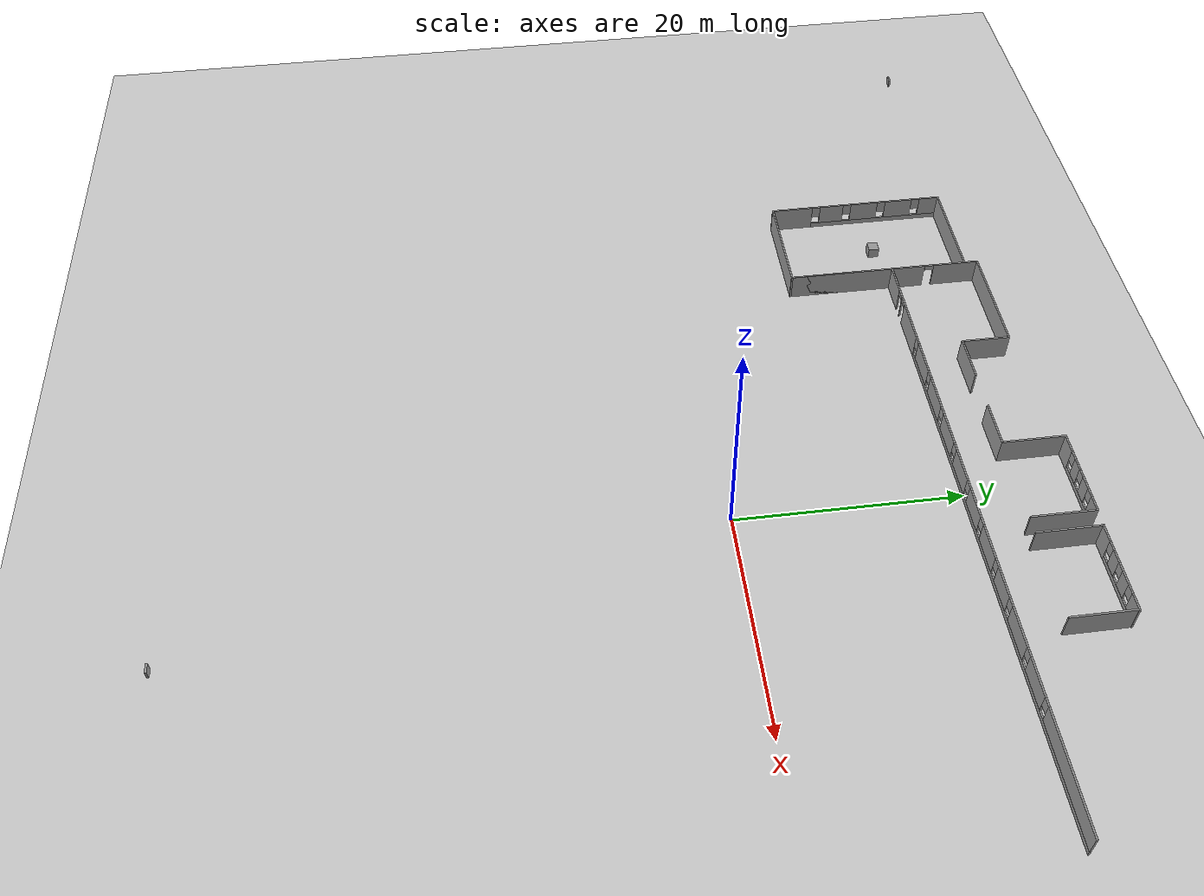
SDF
<sdf version="1.6">
 <world name="default">
  <model name="ground_plane">
   <static>1</static>
   <link name="link">
    <collision name="collision">
     <geometry><plane><normal>0 0 1</normal><size>100 100</size></plane></geometry>
     <surface>
      <contact><collide_bitmask>65535</collide_bitmask></contact>
      <friction><ode><mu>100</mu><mu2>50</mu2></ode></friction>
     </surface>
    </collision>
    <visual name="visual">
     <cast_shadows>0</cast_shadows>
     <geometry><plane><normal>0 0 1</normal><size>100 100</size></plane></geometry>
     <material>
      <script><uri>file://media/materials/scripts/gazebo.material</uri><name>Gazebo/Grey</name></script>
     </material>
    </visual>
   </link>
  </model>
  <model name="firstFloor">
   <pose>-0.1165 3.07366 0 0 -0 0</pose>
   <link name="Wall_15">
    <pose>2.99839 16.757 0 0 -0 0</pose>
    <visual name="Wall_15_Visual_0">
     <pose>-26.7456 0 1.25 0 -0 0</pose>
     <geometry><box><size>3.00874 0.15 2.5</size></box></geometry>
     <material>
      <script><uri>file://media/materials/scripts/gazebo.material</uri><name>Gazebo/Grey</name></script>
      <ambient>1 1 1 1</ambient>
     </material>
     <meta><layer>0</layer></meta>
    </visual>
    <collision name="Wall_15_Collision_0">
     <geometry><box><size>3.00874 0.15 2.5</size></box></geometry>
     <pose>-26.7456 0 1.25 0 -0 0</pose>
    </collision>
    <visual name="Wall_15_Visual_1">
     <pose>-24.2997 0 1.25 0 -0 0</pose>
     <geometry><box><size>0.083156 0.15 2.5</size></box></geometry>
     <material>
      <script><uri>file://media/materials/scripts/gazebo.material</uri><name>Gazebo/Grey</name></script>
      <ambient>1 1 1 1</ambient>
     </material>
     <meta><layer>0</layer></meta>
    </visual>
    <collision name="Wall_15_Collision_1">
     <geometry><box><size>0.083156 0.15 2.5</size></box></geometry>
     <pose>-24.2997 0 1.25 0 -0 0</pose>
    </collision>
    <visual name="Wall_15_Visual_2">
     <pose>-21.2466 0 1.25 0 -0 0</pose>
     <geometry><box><size>4.22309 0.15 2.5</size></box></geometry>
     <material>
      <script><uri>file://media/materials/scripts/gazebo.material</uri><name>Gazebo/Grey</name></script>
      <ambient>1 1 1 1</ambient>
     </material>
     <meta><layer>0</layer></meta>
    </visual>
    <collision name="Wall_15_Collision_2">
     <geometry><box><size>4.22309 0.15 2.5</size></box></geometry>
     <pose>-21.2466 0 1.25 0 -0 0</pose>
    </collision>
    <visual name="Wall_15_Visual_3">
     <pose>4.55749 0 0.25 0 -0 0</pose>
     <geometry><box><size>47.385 0.15 0.5</size></box></geometry>
     <material>
      <script><uri>file://media/materials/scripts/gazebo.material</uri><name>Gazebo/Grey</name></script>
      <ambient>1 1 1 1</ambient>
     </material>
     <meta><layer>0</layer></meta>
    </visual>
    <collision name="Wall_15_Collision_3">
     <geometry><box><size>47.385 0.15 0.5</size></box></geometry>
     <pose>4.55749 0 0.25 0 -0 0</pose>
    </collision>
    <visual name="Wall_15_Visual_4">
     <pose>-16.6507 0 1.5 0 -0 0</pose>
     <geometry><box><size>3.36858 0.15 2</size></box></geometry>
     <material>
      <script><uri>file://media/materials/scripts/gazebo.material</uri><name>Gazebo/Grey</name></script>
      <ambient>1 1 1 1</ambient>
     </material>
     <meta><layer>0</layer></meta>
    </visual>
    <collision name="Wall_15_Collision_4">
     <geometry><box><size>3.36858 0.15 2</size></box></geometry>
     <pose>-16.6507 0 1.5 0 -0 0</pose>
    </collision>
    <visual name="Wall_15_Visual_5">
     <pose>-12.4625 0 1.5 0 -0 0</pose>
     <geometry><box><size>3.40791 0.15 2</size></box></geometry>
     <material>
      <script><uri>file://media/materials/scripts/gazebo.material</uri><name>Gazebo/Grey</name></script>
      <ambient>1 1 1 1</ambient>
     </material>
     <meta><layer>0</layer></meta>
    </visual>
    <collision name="Wall_15_Collision_5">
     <geometry><box><size>3.40791 0.15 2</size></box></geometry>
     <pose>-12.4625 0 1.5 0 -0 0</pose>
    </collision>
    <visual name="Wall_15_Visual_6">
     <pose>-8.34568 0 1.5 0 -0 0</pose>
     <geometry><box><size>3.2257 0.15 2</size></box></geometry>
     <material>
      <script><uri>file://media/materials/scripts/gazebo.material</uri><name>Gazebo/Grey</name></script>
      <ambient>1 1 1 1</ambient>
     </material>
     <meta><layer>0</layer></meta>
    </visual>
    <collision name="Wall_15_Collision_6">
     <geometry><box><size>3.2257 0.15 2</size></box></geometry>
     <pose>-8.34568 0 1.5 0 -0 0</pose>
    </collision>
    <visual name="Wall_15_Visual_7">
     <pose>-4.31076 0 1.5 0 -0 0</pose>
     <geometry><box><size>3.24413 0.15 2</size></box></geometry>
     <material>
      <script><uri>file://media/materials/scripts/gazebo.material</uri><name>Gazebo/Grey</name></script>
      <ambient>1 1 1 1</ambient>
     </material>
     <meta><layer>0</layer></meta>
    </visual>
    <collision name="Wall_15_Collision_7">
     <geometry><box><size>3.24413 0.15 2</size></box></geometry>
     <pose>-4.31076 0 1.5 0 -0 0</pose>
    </collision>
    <visual name="Wall_15_Visual_8">
     <pose>-0.385574 0 1.5 0 -0 0</pose>
     <geometry><box><size>3.00624 0.15 2</size></box></geometry>
     <material>
      <script><uri>file://media/materials/scripts/gazebo.material</uri><name>Gazebo/Grey</name></script>
      <ambient>1 1 1 1</ambient>
     </material>
     <meta><layer>0</layer></meta>
    </visual>
    <collision name="Wall_15_Collision_8">
     <geometry><box><size>3.00624 0.15 2</size></box></geometry>
     <pose>-0.385574 0 1.5 0 -0 0</pose>
    </collision>
    <visual name="Wall_15_Visual_9">
     <pose>3.53961 0 1.5 0 -0 0</pose>
     <geometry><box><size>3.24413 0.15 2</size></box></geometry>
     <material>
      <script><uri>file://media/materials/scripts/gazebo.material</uri><name>Gazebo/Grey</name></script>
      <ambient>1 1 1 1</ambient>
     </material>
     <meta><layer>0</layer></meta>
    </visual>
    <collision name="Wall_15_Collision_9">
     <geometry><box><size>3.24413 0.15 2</size></box></geometry>
     <pose>3.53961 0 1.5 0 -0 0</pose>
    </collision>
    <visual name="Wall_15_Visual_10">
     <pose>7.39046 0 1.5 0 -0 0</pose>
     <geometry><box><size>2.85756 0.15 2</size></box></geometry>
     <material>
      <script><uri>file://media/materials/scripts/gazebo.material</uri><name>Gazebo/Grey</name></script>
      <ambient>1 1 1 1</ambient>
     </material>
     <meta><layer>0</layer></meta>
    </visual>
    <collision name="Wall_15_Collision_10">
     <geometry><box><size>2.85756 0.15 2</size></box></geometry>
     <pose>7.39046 0 1.5 0 -0 0</pose>
    </collision>
    <visual name="Wall_15_Visual_11">
     <pose>11.4197 0 1.5 0 -0 0</pose>
     <geometry><box><size>3.60097 0.15 2</size></box></geometry>
     <material>
      <script><uri>file://media/materials/scripts/gazebo.material</uri><name>Gazebo/Grey</name></script>
      <ambient>1 1 1 1</ambient>
     </material>
     <meta><layer>0</layer></meta>
    </visual>
    <collision name="Wall_15_Collision_11">
     <geometry><box><size>3.60097 0.15 2</size></box></geometry>
     <pose>11.4197 0 1.5 0 -0 0</pose>
    </collision>
    <visual name="Wall_15_Visual_12">
     <pose>15.7166 0 1.5 0 -0 0</pose>
     <geometry><box><size>3.39282 0.15 2</size></box></geometry>
     <material>
      <script><uri>file://media/materials/scripts/gazebo.material</uri><name>Gazebo/Grey</name></script>
      <ambient>1 1 1 1</ambient>
     </material>
     <meta><layer>0</layer></meta>
    </visual>
    <collision name="Wall_15_Collision_12">
     <geometry><box><size>3.39282 0.15 2</size></box></geometry>
     <pose>15.7166 0 1.5 0 -0 0</pose>
    </collision>
    <visual name="Wall_15_Visual_13">
     <pose>23.2315 0 1.5 0 -0 0</pose>
     <geometry><box><size>10.037 0.15 2</size></box></geometry>
     <material>
      <script><uri>file://media/materials/scripts/gazebo.material</uri><name>Gazebo/Grey</name></script>
      <ambient>1 1 1 1</ambient>
     </material>
     <meta><layer>0</layer></meta>
    </visual>
    <collision name="Wall_15_Collision_13">
     <geometry><box><size>10.037 0.15 2</size></box></geometry>
     <pose>23.2315 0 1.5 0 -0 0</pose>
    </collision>
    <visual name="Wall_15_Visual_14">
     <pose>-18.735 0 1.9 0 -0 0</pose>
     <geometry><box><size>0.8 0.15 1.2</size></box></geometry>
     <material>
      <script><uri>file://media/materials/scripts/gazebo.material</uri><name>Gazebo/Grey</name></script>
      <ambient>1 1 1 1</ambient>
     </material>
     <meta><layer>0</layer></meta>
    </visual>
    <collision name="Wall_15_Collision_14">
     <geometry><box><size>0.8 0.15 1.2</size></box></geometry>
     <pose>-18.735 0 1.9 0 -0 0</pose>
    </collision>
    <visual name="Wall_15_Visual_15">
     <pose>-14.5664 0 1.9 0 -0 0</pose>
     <geometry><box><size>0.8 0.15 1.2</size></box></geometry>
     <material>
      <script><uri>file://media/materials/scripts/gazebo.material</uri><name>Gazebo/Grey</name></script>
      <ambient>1 1 1 1</ambient>
     </material>
     <meta><layer>0</layer></meta>
    </visual>
    <collision name="Wall_15_Collision_15">
     <geometry><box><size>0.8 0.15 1.2</size></box></geometry>
     <pose>-14.5664 0 1.9 0 -0 0</pose>
    </collision>
    <visual name="Wall_15_Visual_16">
     <pose>-10.3585 0 1.9 0 -0 0</pose>
     <geometry><box><size>0.8 0.15 1.2</size></box></geometry>
     <material>
      <script><uri>file://media/materials/scripts/gazebo.material</uri><name>Gazebo/Grey</name></script>
      <ambient>1 1 1 1</ambient>
     </material>
     <meta><layer>0</layer></meta>
    </visual>
    <collision name="Wall_15_Collision_16">
     <geometry><box><size>0.8 0.15 1.2</size></box></geometry>
     <pose>-10.3585 0 1.9 0 -0 0</pose>
    </collision>
    <visual name="Wall_15_Visual_17">
     <pose>-6.33283 0 1.9 0 -0 0</pose>
     <geometry><box><size>0.8 0.15 1.2</size></box></geometry>
     <material>
      <script><uri>file://media/materials/scripts/gazebo.material</uri><name>Gazebo/Grey</name></script>
      <ambient>1 1 1 1</ambient>
     </material>
     <meta><layer>0</layer></meta>
    </visual>
    <collision name="Wall_15_Collision_17">
     <geometry><box><size>0.8 0.15 1.2</size></box></geometry>
     <pose>-6.33283 0 1.9 0 -0 0</pose>
    </collision>
    <visual name="Wall_15_Visual_18">
     <pose>-2.2887 0 1.9 0 -0 0</pose>
     <geometry><box><size>0.8 0.15 1.2</size></box></geometry>
     <material>
      <script><uri>file://media/materials/scripts/gazebo.material</uri><name>Gazebo/Grey</name></script>
      <ambient>1 1 1 1</ambient>
     </material>
     <meta><layer>0</layer></meta>
    </visual>
    <collision name="Wall_15_Collision_18">
     <geometry><box><size>0.8 0.15 1.2</size></box></geometry>
     <pose>-2.2887 0 1.9 0 -0 0</pose>
    </collision>
    <visual name="Wall_15_Visual_19">
     <pose>1.51755 0 1.9 0 -0 0</pose>
     <geometry><box><size>0.8 0.15 1.2</size></box></geometry>
     <material>
      <script><uri>file://media/materials/scripts/gazebo.material</uri><name>Gazebo/Grey</name></script>
      <ambient>1 1 1 1</ambient>
     </material>
     <meta><layer>0</layer></meta>
    </visual>
    <collision name="Wall_15_Collision_19">
     <geometry><box><size>0.8 0.15 1.2</size></box></geometry>
     <pose>1.51755 0 1.9 0 -0 0</pose>
    </collision>
    <visual name="Wall_15_Visual_20">
     <pose>5.56168 0 1.9 0 -0 0</pose>
     <geometry><box><size>0.8 0.15 1.2</size></box></geometry>
     <material>
      <script><uri>file://media/materials/scripts/gazebo.material</uri><name>Gazebo/Grey</name></script>
      <ambient>1 1 1 1</ambient>
     </material>
     <meta><layer>0</layer></meta>
    </visual>
    <collision name="Wall_15_Collision_20">
     <geometry><box><size>0.8 0.15 1.2</size></box></geometry>
     <pose>5.56168 0 1.9 0 -0 0</pose>
    </collision>
    <visual name="Wall_15_Visual_21">
     <pose>9.21925 0 1.9 0 -0 0</pose>
     <geometry><box><size>0.8 0.15 1.2</size></box></geometry>
     <material>
      <script><uri>file://media/materials/scripts/gazebo.material</uri><name>Gazebo/Grey</name></script>
      <ambient>1 1 1 1</ambient>
     </material>
     <meta><layer>0</layer></meta>
    </visual>
    <collision name="Wall_15_Collision_21">
     <geometry><box><size>0.8 0.15 1.2</size></box></geometry>
     <pose>9.21925 0 1.9 0 -0 0</pose>
    </collision>
    <visual name="Wall_15_Visual_22">
     <pose>13.6202 0 1.9 0 -0 0</pose>
     <geometry><box><size>0.8 0.15 1.2</size></box></geometry>
     <material>
      <script><uri>file://media/materials/scripts/gazebo.material</uri><name>Gazebo/Grey</name></script>
      <ambient>1 1 1 1</ambient>
     </material>
     <meta><layer>0</layer></meta>
    </visual>
    <collision name="Wall_15_Collision_22">
     <geometry><box><size>0.8 0.15 1.2</size></box></geometry>
     <pose>13.6202 0 1.9 0 -0 0</pose>
    </collision>
    <visual name="Wall_15_Visual_23">
     <pose>17.813 0 1.9 0 -0 0</pose>
     <geometry><box><size>0.8 0.15 1.2</size></box></geometry>
     <material>
      <script><uri>file://media/materials/scripts/gazebo.material</uri><name>Gazebo/Grey</name></script>
      <ambient>1 1 1 1</ambient>
     </material>
     <meta><layer>0</layer></meta>
    </visual>
    <collision name="Wall_15_Collision_23">
     <geometry><box><size>0.8 0.15 1.2</size></box></geometry>
     <pose>17.813 0 1.9 0 -0 0</pose>
    </collision>
    <visual name="Wall_15_Visual_24">
     <pose>-24.7913 0 2.25 0 -0 0</pose>
     <geometry><box><size>0.9 0.15 0.5</size></box></geometry>
     <material>
      <script><uri>file://media/materials/scripts/gazebo.material</uri><name>Gazebo/Grey</name></script>
      <ambient>1 1 1 1</ambient>
     </material>
     <meta><layer>0</layer></meta>
    </visual>
    <collision name="Wall_15_Collision_24">
     <geometry><box><size>0.9 0.15 0.5</size></box></geometry>
     <pose>-24.7913 0 2.25 0 -0 0</pose>
    </collision>
    <visual name="Wall_15_Visual_25">
     <pose>-23.8081 0 2.25 0 -0 0</pose>
     <geometry><box><size>0.9 0.15 0.5</size></box></geometry>
     <material>
      <script><uri>file://media/materials/scripts/gazebo.material</uri><name>Gazebo/Grey</name></script>
      <ambient>1 1 1 1</ambient>
     </material>
     <meta><layer>0</layer></meta>
    </visual>
    <collision name="Wall_15_Collision_25">
     <geometry><box><size>0.9 0.15 0.5</size></box></geometry>
     <pose>-23.8081 0 2.25 0 -0 0</pose>
    </collision>
   </link>
   <link name="Wall_33">
    <collision name="Wall_33_Collision">
     <geometry><box><size>5.75 0.15 2.5</size></box></geometry>
     <pose>0 0 1.25 0 -0 0</pose>
    </collision>
    <visual name="Wall_33_Visual">
     <pose>0 0 1.25 0 -0 0</pose>
     <geometry><box><size>5.75 0.15 2.5</size></box></geometry>
     <material>
      <script><uri>file://media/materials/scripts/gazebo.material</uri><name>Gazebo/Grey</name></script>
      <ambient>1 1 1 1</ambient>
     </material>
     <meta><layer>0</layer></meta>
    </visual>
    <pose>-3.25319 23.5947 0 0 -0 1.5708</pose>
   </link>
   <link name="Wall_34">
    <pose>0.671807 26.3947 0 0 -0 0</pose>
    <visual name="Wall_34_Visual_0">
     <pose>-3.08954 0 1.25 0 -0 0</pose>
     <geometry><box><size>1.82092 0.15 2.5</size></box></geometry>
     <material>
      <script><uri>file://media/materials/scripts/gazebo.material</uri><name>Gazebo/Grey</name></script>
      <ambient>1 1 1 1</ambient>
     </material>
     <meta><layer>0</layer></meta>
    </visual>
    <collision name="Wall_34_Collision_0">
     <geometry><box><size>1.82092 0.15 2.5</size></box></geometry>
     <pose>-3.08954 0 1.25 0 -0 0</pose>
    </collision>
    <visual name="Wall_34_Visual_1">
     <pose>0.910461 0 0.25 0 -0 0</pose>
     <geometry><box><size>6.17908 0.15 0.5</size></box></geometry>
     <material>
      <script><uri>file://media/materials/scripts/gazebo.material</uri><name>Gazebo/Grey</name></script>
      <ambient>1 1 1 1</ambient>
     </material>
     <meta><layer>0</layer></meta>
    </visual>
    <collision name="Wall_34_Collision_1">
     <geometry><box><size>6.17908 0.15 0.5</size></box></geometry>
     <pose>0.910461 0 0.25 0 -0 0</pose>
    </collision>
    <visual name="Wall_34_Visual_2">
     <pose>-0.815585 0 1.5 0 -0 0</pose>
     <geometry><box><size>1.12699 0.15 2</size></box></geometry>
     <material>
      <script><uri>file://media/materials/scripts/gazebo.material</uri><name>Gazebo/Grey</name></script>
      <ambient>1 1 1 1</ambient>
     </material>
     <meta><layer>0</layer></meta>
    </visual>
    <collision name="Wall_34_Collision_2">
     <geometry><box><size>1.12699 0.15 2</size></box></geometry>
     <pose>-0.815585 0 1.5 0 -0 0</pose>
    </collision>
    <visual name="Wall_34_Visual_3">
     <pose>1.15073 0 1.5 0 -0 0</pose>
     <geometry><box><size>1.20564 0.15 2</size></box></geometry>
     <material>
      <script><uri>file://media/materials/scripts/gazebo.material</uri><name>Gazebo/Grey</name></script>
      <ambient>1 1 1 1</ambient>
     </material>
     <meta><layer>0</layer></meta>
    </visual>
    <collision name="Wall_34_Collision_3">
     <geometry><box><size>1.20564 0.15 2</size></box></geometry>
     <pose>1.15073 0 1.5 0 -0 0</pose>
    </collision>
    <visual name="Wall_34_Visual_4">
     <pose>3.27677 0 1.5 0 -0 0</pose>
     <geometry><box><size>1.44646 0.15 2</size></box></geometry>
     <material>
      <script><uri>file://media/materials/scripts/gazebo.material</uri><name>Gazebo/Grey</name></script>
      <ambient>1 1 1 1</ambient>
     </material>
     <meta><layer>0</layer></meta>
    </visual>
    <collision name="Wall_34_Collision_4">
     <geometry><box><size>1.44646 0.15 2</size></box></geometry>
     <pose>3.27677 0 1.5 0 -0 0</pose>
    </collision>
    <visual name="Wall_34_Visual_5">
     <pose>-1.77908 0 1.9 0 -0 0</pose>
     <geometry><box><size>0.8 0.15 1.2</size></box></geometry>
     <material>
      <script><uri>file://media/materials/scripts/gazebo.material</uri><name>Gazebo/Grey</name></script>
      <ambient>1 1 1 1</ambient>
     </material>
     <meta><layer>0</layer></meta>
    </visual>
    <collision name="Wall_34_Collision_5">
     <geometry><box><size>0.8 0.15 1.2</size></box></geometry>
     <pose>-1.77908 0 1.9 0 -0 0</pose>
    </collision>
    <visual name="Wall_34_Visual_6">
     <pose>0.147907 0 1.9 0 -0 0</pose>
     <geometry><box><size>0.8 0.15 1.2</size></box></geometry>
     <material>
      <script><uri>file://media/materials/scripts/gazebo.material</uri><name>Gazebo/Grey</name></script>
      <ambient>1 1 1 1</ambient>
     </material>
     <meta><layer>0</layer></meta>
    </visual>
    <collision name="Wall_34_Collision_6">
     <geometry><box><size>0.8 0.15 1.2</size></box></geometry>
     <pose>0.147907 0 1.9 0 -0 0</pose>
    </collision>
    <visual name="Wall_34_Visual_7">
     <pose>2.15354 0 1.9 0 -0 0</pose>
     <geometry><box><size>0.8 0.15 1.2</size></box></geometry>
     <material>
      <script><uri>file://media/materials/scripts/gazebo.material</uri><name>Gazebo/Grey</name></script>
      <ambient>1 1 1 1</ambient>
     </material>
     <meta><layer>0</layer></meta>
    </visual>
    <collision name="Wall_34_Collision_7">
     <geometry><box><size>0.8 0.15 1.2</size></box></geometry>
     <pose>2.15354 0 1.9 0 -0 0</pose>
    </collision>
   </link>
   <link name="Wall_35">
    <collision name="Wall_35_Collision">
     <geometry><box><size>5.75 0.15 2.5</size></box></geometry>
     <pose>0 0 1.25 0 -0 0</pose>
    </collision>
    <visual name="Wall_35_Visual">
     <pose>0 0 1.25 0 -0 0</pose>
     <geometry><box><size>5.75 0.15 2.5</size></box></geometry>
     <material>
      <script><uri>file://media/materials/scripts/gazebo.material</uri><name>Gazebo/Grey</name></script>
      <ambient>1 1 1 1</ambient>
     </material>
     <meta><layer>0</layer></meta>
    </visual>
    <pose>4.59681 23.5947 0 0 0 -1.5708</pose>
   </link>
   <link name="Wall_42">
    <collision name="Wall_42_Collision">
     <geometry><box><size>5.75 0.15 2.5</size></box></geometry>
     <pose>0 0 1.25 0 -0 0</pose>
    </collision>
    <visual name="Wall_42_Visual">
     <pose>0 0 1.25 0 -0 0</pose>
     <geometry><box><size>5.75 0.15 2.5</size></box></geometry>
     <material>
      <script><uri>file://media/materials/scripts/gazebo.material</uri><name>Gazebo/Grey</name></script>
      <ambient>1 1 1 1</ambient>
     </material>
     <meta><layer>0</layer></meta>
    </visual>
    <pose>6.13497 23.5303 0 0 -0 1.5708</pose>
   </link>
   <link name="Wall_43">
    <pose>10.1395 26.3303 0 0 -0 0</pose>
    <visual name="Wall_43_Visual_0">
     <pose>-3.23474 0 1.25 0 -0 0</pose>
     <geometry><box><size>1.68961 0.15 2.5</size></box></geometry>
     <material>
      <script><uri>file://media/materials/scripts/gazebo.material</uri><name>Gazebo/Grey</name></script>
      <ambient>1 1 1 1</ambient>
     </material>
     <meta><layer>0</layer></meta>
    </visual>
    <collision name="Wall_43_Collision_0">
     <geometry><box><size>1.68961 0.15 2.5</size></box></geometry>
     <pose>-3.23474 0 1.25 0 -0 0</pose>
    </collision>
    <visual name="Wall_43_Visual_1">
     <pose>0.844804 0 0.25 0 -0 0</pose>
     <geometry><box><size>6.46949 0.15 0.5</size></box></geometry>
     <material>
      <script><uri>file://media/materials/scripts/gazebo.material</uri><name>Gazebo/Grey</name></script>
      <ambient>1 1 1 1</ambient>
     </material>
     <meta><layer>0</layer></meta>
    </visual>
    <collision name="Wall_43_Collision_1">
     <geometry><box><size>6.46949 0.15 0.5</size></box></geometry>
     <pose>0.844804 0 0.25 0 -0 0</pose>
    </collision>
    <visual name="Wall_43_Visual_2">
     <pose>-0.975766 0 1.5 0 -0 0</pose>
     <geometry><box><size>1.22835 0.15 2</size></box></geometry>
     <material>
      <script><uri>file://media/materials/scripts/gazebo.material</uri><name>Gazebo/Grey</name></script>
      <ambient>1 1 1 1</ambient>
     </material>
     <meta><layer>0</layer></meta>
    </visual>
    <collision name="Wall_43_Collision_2">
     <geometry><box><size>1.22835 0.15 2</size></box></geometry>
     <pose>-0.975766 0 1.5 0 -0 0</pose>
    </collision>
    <visual name="Wall_43_Visual_3">
     <pose>1.07859 0 1.5 0 -0 0</pose>
     <geometry><box><size>1.28036 0.15 2</size></box></geometry>
     <material>
      <script><uri>file://media/materials/scripts/gazebo.material</uri><name>Gazebo/Grey</name></script>
      <ambient>1 1 1 1</ambient>
     </material>
     <meta><layer>0</layer></meta>
    </visual>
    <collision name="Wall_43_Collision_3">
     <geometry><box><size>1.28036 0.15 2</size></box></geometry>
     <pose>1.07859 0 1.5 0 -0 0</pose>
    </collision>
    <visual name="Wall_43_Visual_4">
     <pose>3.29916 0 1.5 0 -0 0</pose>
     <geometry><box><size>1.56078 0.15 2</size></box></geometry>
     <material>
      <script><uri>file://media/materials/scripts/gazebo.material</uri><name>Gazebo/Grey</name></script>
      <ambient>1 1 1 1</ambient>
     </material>
     <meta><layer>0</layer></meta>
    </visual>
    <collision name="Wall_43_Collision_4">
     <geometry><box><size>1.56078 0.15 2</size></box></geometry>
     <pose>3.29916 0 1.5 0 -0 0</pose>
    </collision>
    <visual name="Wall_43_Visual_5">
     <pose>-1.98994 0 1.9 0 -0 0</pose>
     <geometry><box><size>0.8 0.15 1.2</size></box></geometry>
     <material>
      <script><uri>file://media/materials/scripts/gazebo.material</uri><name>Gazebo/Grey</name></script>
      <ambient>1 1 1 1</ambient>
     </material>
     <meta><layer>0</layer></meta>
    </visual>
    <collision name="Wall_43_Collision_5">
     <geometry><box><size>0.8 0.15 1.2</size></box></geometry>
     <pose>-1.98994 0 1.9 0 -0 0</pose>
    </collision>
    <visual name="Wall_43_Visual_6">
     <pose>0.038408 0 1.9 0 -0 0</pose>
     <geometry><box><size>0.8 0.15 1.2</size></box></geometry>
     <material>
      <script><uri>file://media/materials/scripts/gazebo.material</uri><name>Gazebo/Grey</name></script>
      <ambient>1 1 1 1</ambient>
     </material>
     <meta><layer>0</layer></meta>
    </visual>
    <collision name="Wall_43_Collision_6">
     <geometry><box><size>0.8 0.15 1.2</size></box></geometry>
     <pose>0.038408 0 1.9 0 -0 0</pose>
    </collision>
    <visual name="Wall_43_Visual_7">
     <pose>2.11877 0 1.9 0 -0 0</pose>
     <geometry><box><size>0.8 0.15 1.2</size></box></geometry>
     <material>
      <script><uri>file://media/materials/scripts/gazebo.material</uri><name>Gazebo/Grey</name></script>
      <ambient>1 1 1 1</ambient>
     </material>
     <meta><layer>0</layer></meta>
    </visual>
    <collision name="Wall_43_Collision_7">
     <geometry><box><size>0.8 0.15 1.2</size></box></geometry>
     <pose>2.11877 0 1.9 0 -0 0</pose>
    </collision>
   </link>
   <link name="Wall_44">
    <collision name="Wall_44_Collision">
     <geometry><box><size>5.75 0.15 2.5</size></box></geometry>
     <pose>0 0 1.25 0 -0 0</pose>
    </collision>
    <visual name="Wall_44_Visual">
     <pose>0 0 1.25 0 -0 0</pose>
     <geometry><box><size>5.75 0.15 2.5</size></box></geometry>
     <material>
      <script><uri>file://media/materials/scripts/gazebo.material</uri><name>Gazebo/Grey</name></script>
      <ambient>1 1 1 1</ambient>
     </material>
     <meta><layer>0</layer></meta>
    </visual>
    <pose>14.1043 23.5303 0 0 0 -1.5708</pose>
   </link>
   <link name="Wall_56">
    <collision name="Wall_56_Collision">
     <geometry><box><size>10.25 0.15 2.5</size></box></geometry>
     <pose>0 0 1.25 0 -0 0</pose>
    </collision>
    <visual name="Wall_56_Visual">
     <pose>0 0 1.25 0 -0 0</pose>
     <geometry><box><size>10.25 0.15 2.5</size></box></geometry>
     <material>
      <script><uri>file://media/materials/scripts/gazebo.material</uri><name>Gazebo/Grey</name></script>
      <ambient>1 1 1 1</ambient>
     </material>
     <meta><layer>0</layer></meta>
    </visual>
    <pose>-20.1968 25.1054 0 0 -0 0</pose>
   </link>
   <link name="Wall_57">
    <collision name="Wall_57_Collision">
     <geometry><box><size>4.25 0.15 2.5</size></box></geometry>
     <pose>0 0 1.25 0 -0 0</pose>
    </collision>
    <visual name="Wall_57_Visual">
     <pose>0 0 1.25 0 -0 0</pose>
     <geometry><box><size>4.25 0.15 2.5</size></box></geometry>
     <material>
      <script><uri>file://media/materials/scripts/gazebo.material</uri><name>Gazebo/Grey</name></script>
      <ambient>1 1 1 1</ambient>
     </material>
     <meta><layer>0</layer></meta>
    </visual>
    <pose>-15.1468 23.0554 0 0 0 -1.5708</pose>
   </link>
   <link name="Wall_59">
    <pose>-25.2468 16.0554 0 0 0 -1.5708</pose>
    <visual name="Wall_59_Visual_0">
     <pose>-6.94813 0 1.25 0 -0 0</pose>
     <geometry><box><size>4.35374 0.15 2.5</size></box></geometry>
     <material>
      <script><uri>file://media/materials/scripts/gazebo.material</uri><name>Gazebo/Grey</name></script>
      <ambient>1 1 1 1</ambient>
     </material>
     <meta><layer>0</layer></meta>
    </visual>
    <collision name="Wall_59_Collision_0">
     <geometry><box><size>4.35374 0.15 2.5</size></box></geometry>
     <pose>-6.94813 0 1.25 0 -0 0</pose>
    </collision>
    <visual name="Wall_59_Visual_1">
     <pose>2.62687 0 1.25 0 -0 0</pose>
     <geometry><box><size>12.9963 0.15 2.5</size></box></geometry>
     <material>
      <script><uri>file://media/materials/scripts/gazebo.material</uri><name>Gazebo/Grey</name></script>
      <ambient>1 1 1 1</ambient>
     </material>
     <meta><layer>0</layer></meta>
    </visual>
    <collision name="Wall_59_Collision_1">
     <geometry><box><size>12.9963 0.15 2.5</size></box></geometry>
     <pose>2.62687 0 1.25 0 -0 0</pose>
    </collision>
    <visual name="Wall_59_Visual_2">
     <pose>3.05031 0 1.25 0 -0 0</pose>
     <geometry><box><size>12.1494 0.15 2.5</size></box></geometry>
     <material>
      <script><uri>file://media/materials/scripts/gazebo.material</uri><name>Gazebo/Grey</name></script>
      <ambient>1 1 1 1</ambient>
     </material>
     <meta><layer>0</layer></meta>
    </visual>
    <collision name="Wall_59_Collision_2">
     <geometry><box><size>12.1494 0.15 2.5</size></box></geometry>
     <pose>3.05031 0 1.25 0 -0 0</pose>
    </collision>
    <visual name="Wall_59_Visual_3">
     <pose>-4.34782 0 2.25 0 -0 0</pose>
     <geometry><box><size>0.846882 0.15 0.5</size></box></geometry>
     <material>
      <script><uri>file://media/materials/scripts/gazebo.material</uri><name>Gazebo/Grey</name></script>
      <ambient>1 1 1 1</ambient>
     </material>
     <meta><layer>0</layer></meta>
    </visual>
    <collision name="Wall_59_Collision_3">
     <geometry><box><size>0.846882 0.15 0.5</size></box></geometry>
     <pose>-4.34782 0 2.25 0 -0 0</pose>
    </collision>
   </link>
   <link name="Wall_60">
    <collision name="Wall_60_Collision">
     <geometry><box><size>9.75 0.15 2.5</size></box></geometry>
     <pose>0 0 1.25 0 -0 0</pose>
    </collision>
    <visual name="Wall_60_Visual">
     <pose>0 0 1.25 0 -0 0</pose>
     <geometry><box><size>9.75 0.15 2.5</size></box></geometry>
     <material>
      <script><uri>file://media/materials/scripts/gazebo.material</uri><name>Gazebo/Grey</name></script>
      <ambient>1 1 1 1</ambient>
     </material>
     <meta><layer>0</layer></meta>
    </visual>
    <pose>-30.0468 7.00542 0 0 -0 3.14159</pose>
   </link>
   <link name="Wall_61">
    <pose>-34.8468 15.4304 0 0 -0 1.5708</pose>
    <visual name="Wall_61_Visual_0">
     <pose>-6.47123 0 1.25 0 -0 0</pose>
     <geometry><box><size>4.05754 0.15 2.5</size></box></geometry>
     <material>
      <script><uri>file://media/materials/scripts/gazebo.material</uri><name>Gazebo/Grey</name></script>
      <ambient>1 1 1 1</ambient>
     </material>
     <meta><layer>0</layer></meta>
    </visual>
    <collision name="Wall_61_Collision_0">
     <geometry><box><size>4.05754 0.15 2.5</size></box></geometry>
     <pose>-6.47123 0 1.25 0 -0 0</pose>
    </collision>
    <visual name="Wall_61_Visual_1">
     <pose>2.02877 0 0.25 0 -0 0</pose>
     <geometry><box><size>12.9425 0.15 0.5</size></box></geometry>
     <material>
      <script><uri>file://media/materials/scripts/gazebo.material</uri><name>Gazebo/Grey</name></script>
      <ambient>1 1 1 1</ambient>
     </material>
     <meta><layer>0</layer></meta>
    </visual>
    <collision name="Wall_61_Collision_1">
     <geometry><box><size>12.9425 0.15 0.5</size></box></geometry>
     <pose>2.02877 0 0.25 0 -0 0</pose>
    </collision>
    <visual name="Wall_61_Visual_2">
     <pose>-2.46914 0 1.5 0 -0 0</pose>
     <geometry><box><size>2.34665 0.15 2</size></box></geometry>
     <material>
      <script><uri>file://media/materials/scripts/gazebo.material</uri><name>Gazebo/Grey</name></script>
      <ambient>1 1 1 1</ambient>
     </material>
     <meta><layer>0</layer></meta>
    </visual>
    <collision name="Wall_61_Collision_2">
     <geometry><box><size>2.34665 0.15 2</size></box></geometry>
     <pose>-2.46914 0 1.5 0 -0 0</pose>
    </collision>
    <visual name="Wall_61_Visual_3">
     <pose>0.858118 0 1.5 0 -0 0</pose>
     <geometry><box><size>2.70787 0.15 2</size></box></geometry>
     <material>
      <script><uri>file://media/materials/scripts/gazebo.material</uri><name>Gazebo/Grey</name></script>
      <ambient>1 1 1 1</ambient>
     </material>
     <meta><layer>0</layer></meta>
    </visual>
    <collision name="Wall_61_Collision_3">
     <geometry><box><size>2.70787 0.15 2</size></box></geometry>
     <pose>0.858118 0 1.5 0 -0 0</pose>
    </collision>
    <visual name="Wall_61_Visual_4">
     <pose>4.36599 0 1.5 0 -0 0</pose>
     <geometry><box><size>2.70787 0.15 2</size></box></geometry>
     <material>
      <script><uri>file://media/materials/scripts/gazebo.material</uri><name>Gazebo/Grey</name></script>
      <ambient>1 1 1 1</ambient>
     </material>
     <meta><layer>0</layer></meta>
    </visual>
    <collision name="Wall_61_Collision_4">
     <geometry><box><size>2.70787 0.15 2</size></box></geometry>
     <pose>4.36599 0 1.5 0 -0 0</pose>
    </collision>
    <visual name="Wall_61_Visual_5">
     <pose>7.50996 0 1.5 0 -0 0</pose>
     <geometry><box><size>1.98007 0.15 2</size></box></geometry>
     <material>
      <script><uri>file://media/materials/scripts/gazebo.material</uri><name>Gazebo/Grey</name></script>
      <ambient>1 1 1 1</ambient>
     </material>
     <meta><layer>0</layer></meta>
    </visual>
    <collision name="Wall_61_Collision_5">
     <geometry><box><size>1.98007 0.15 2</size></box></geometry>
     <pose>7.50996 0 1.5 0 -0 0</pose>
    </collision>
    <visual name="Wall_61_Visual_6">
     <pose>-4.04246 0 1.9 0 -0 0</pose>
     <geometry><box><size>0.8 0.15 1.2</size></box></geometry>
     <material>
      <script><uri>file://media/materials/scripts/gazebo.material</uri><name>Gazebo/Grey</name></script>
      <ambient>1 1 1 1</ambient>
     </material>
     <meta><layer>0</layer></meta>
    </visual>
    <collision name="Wall_61_Collision_6">
     <geometry><box><size>0.8 0.15 1.2</size></box></geometry>
     <pose>-4.04246 0 1.9 0 -0 0</pose>
    </collision>
    <visual name="Wall_61_Visual_7">
     <pose>-0.895819 0 1.9 0 -0 0</pose>
     <geometry><box><size>0.8 0.15 1.2</size></box></geometry>
     <material>
      <script><uri>file://media/materials/scripts/gazebo.material</uri><name>Gazebo/Grey</name></script>
      <ambient>1 1 1 1</ambient>
     </material>
     <meta><layer>0</layer></meta>
    </visual>
    <collision name="Wall_61_Collision_7">
     <geometry><box><size>0.8 0.15 1.2</size></box></geometry>
     <pose>-0.895819 0 1.9 0 -0 0</pose>
    </collision>
    <visual name="Wall_61_Visual_8">
     <pose>2.61205 0 1.9 0 -0 0</pose>
     <geometry><box><size>0.8 0.15 1.2</size></box></geometry>
     <material>
      <script><uri>file://media/materials/scripts/gazebo.material</uri><name>Gazebo/Grey</name></script>
      <ambient>1 1 1 1</ambient>
     </material>
     <meta><layer>0</layer></meta>
    </visual>
    <collision name="Wall_61_Collision_8">
     <geometry><box><size>0.8 0.15 1.2</size></box></geometry>
     <pose>2.61205 0 1.9 0 -0 0</pose>
    </collision>
    <visual name="Wall_61_Visual_9">
     <pose>6.11993 0 1.9 0 -0 0</pose>
     <geometry><box><size>0.8 0.15 1.2</size></box></geometry>
     <material>
      <script><uri>file://media/materials/scripts/gazebo.material</uri><name>Gazebo/Grey</name></script>
      <ambient>1 1 1 1</ambient>
     </material>
     <meta><layer>0</layer></meta>
    </visual>
    <collision name="Wall_61_Collision_9">
     <geometry><box><size>0.8 0.15 1.2</size></box></geometry>
     <pose>6.11993 0 1.9 0 -0 0</pose>
    </collision>
   </link>
   <link name="Wall_62">
    <collision name="Wall_62_Collision">
     <geometry><box><size>9.75 0.15 2.5</size></box></geometry>
     <pose>0 0 1.25 0 -0 0</pose>
    </collision>
    <visual name="Wall_62_Visual">
     <pose>0 0 1.25 0 -0 0</pose>
     <geometry><box><size>9.75 0.15 2.5</size></box></geometry>
     <material>
      <script><uri>file://media/materials/scripts/gazebo.material</uri><name>Gazebo/Grey</name></script>
      <ambient>1 1 1 1</ambient>
     </material>
     <meta><layer>0</layer></meta>
    </visual>
    <pose>-30.0468 23.8554 0 0 -0 0</pose>
   </link>
   <link name="Wall_67">
    <collision name="Wall_67_Collision">
     <geometry><box><size>4.25 0.15 2.5</size></box></geometry>
     <pose>0 0 1.25 0 -0 0</pose>
    </collision>
    <visual name="Wall_67_Visual">
     <pose>0 0 1.25 0 -0 0</pose>
     <geometry><box><size>4.25 0.15 2.5</size></box></geometry>
     <material>
      <script><uri>file://media/materials/scripts/gazebo.material</uri><name>Gazebo/Grey</name></script>
      <ambient>1 1 1 1</ambient>
     </material>
     <meta><layer>0</layer></meta>
    </visual>
    <pose>-13.1217 20.7789 0 0 -0 0</pose>
   </link>
   <link name="Wall_69">
    <collision name="Wall_69_Collision">
     <geometry><box><size>4.25 0.15 2.5</size></box></geometry>
     <pose>0 0 1.25 0 -0 0</pose>
    </collision>
    <visual name="Wall_69_Visual">
     <pose>0 0 1.25 0 -0 0</pose>
     <geometry><box><size>4.25 0.15 2.5</size></box></geometry>
     <material>
      <script><uri>file://media/materials/scripts/gazebo.material</uri><name>Gazebo/Grey</name></script>
      <ambient>1 1 1 1</ambient>
     </material>
     <meta><layer>0</layer></meta>
    </visual>
    <pose>-5.30319 20.7947 0 0 -0 3.14159</pose>
   </link>
   <link name="Window_1">
    <collision name="Window_1_Collision">
     <geometry><box><size>0.8 0.17 0.8</size></box></geometry>
     <pose>0 0 0.4 0 -0 0</pose>
    </collision>
    <visual name="Window_1_Visual">
     <pose>0 0 0.4 0 -0 0</pose>
     <geometry><box><size>0.8 0.17 0.8</size></box></geometry>
     <material>
      <script><uri>file://media/materials/scripts/gazebo.material</uri><name>Gazebo/Grey</name></script>
     </material>
    </visual>
    <pose>-56.569 24.4379 0.5 0 -0 0</pose>
   </link>
   <link name="Window_30">
    <collision name="Window_30_Collision">
     <geometry><box><size>0.8 0.17 0.8</size></box></geometry>
     <pose>0 0 0.4 0 -0 0</pose>
    </collision>
    <visual name="Window_30_Visual">
     <pose>0 0 0.4 0 -0 0</pose>
     <geometry><box><size>0.8 0.17 0.8</size></box></geometry>
     <material>
      <script><uri>file://media/materials/scripts/gazebo.material</uri><name>Gazebo/Grey</name></script>
     </material>
    </visual>
    <pose>8.92505 -49.3637 0.5 0 -0 0</pose>
   </link>
   <static>1</static>
  </model>
  <model name="unit_box_5">
   <pose>-30.242 19.3077 0.499995 1e-05 -0 0</pose>
   <link name="link">
    <inertial>
     <mass>1</mass>
     <inertia>
      <ixx>0.166667</ixx>
      <ixy>0</ixy>
      <ixz>0</ixz>
      <iyy>0.166667</iyy>
      <iyz>0</iyz>
      <izz>0.166667</izz>
     </inertia>
    </inertial>
    <collision name="collision"><geometry><box><size>1 1 1</size></box></geometry></collision>
    <visual name="visual">
     <geometry><box><size>1 1 1</size></box></geometry>
     <material>
      <script><name>Gazebo/Grey</name><uri>file://media/materials/scripts/gazebo.material</uri></script>
     </material>
    </visual>
   </link>
  </model>
 </world>
</sdf>
